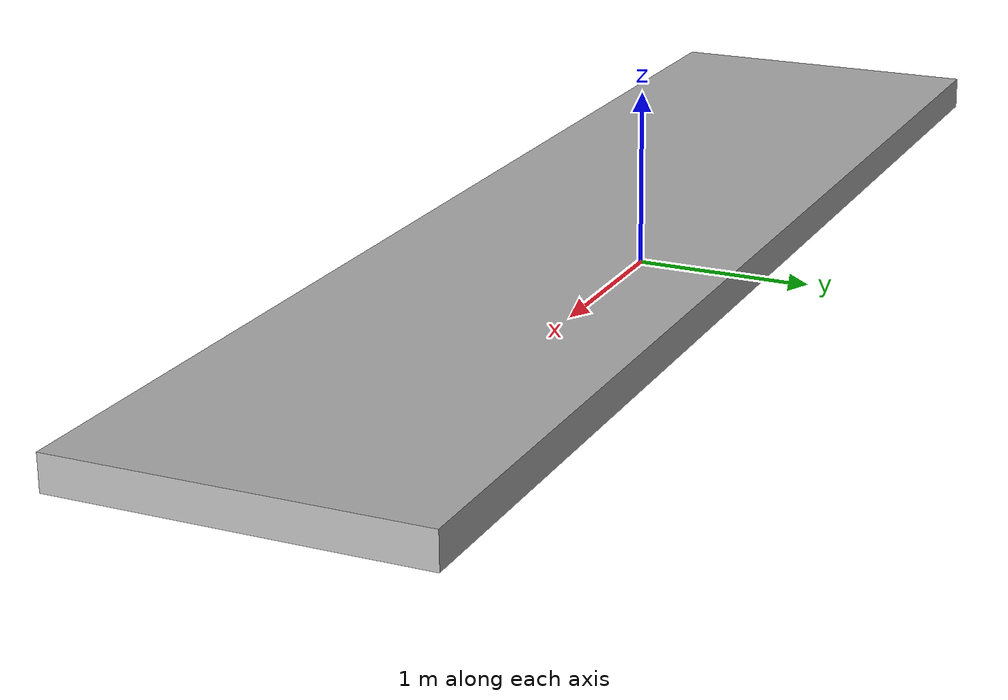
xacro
<?xml version="1.0"?>
<robot name="base_component" xmlns:xacro="http://ros.org/wiki/xacro">

  <link name="base_link">
    <inertial>
      <origin xyz="0.0 -0.25 0.1" rpy="0 0 0"/>
      <mass value="25119.999999999996"/>
      <inertia ixx="8457.066667" iyy="134057.066667" izz="142346.666667" ixy="0.0" iyz="-0.0" ixz="0.0"/>
    </inertial>
    <visual>
      <origin xyz="0 0 0" rpy="0 0 0"/>
      <geometry>
        <mesh filename="package://conveyor_belt/meshes/elements/base_component_base_link.stl" scale="0.001 0.001 0.001"/>
      </geometry>
      <material name="silver">
        <color rgba="0.7 0.7 0.7 1.0"/>
      </material>
    </visual>
    <collision>
      <origin xyz="0 0 0" rpy="0 0 0"/>
      <geometry>
        <mesh filename="package://conveyor_belt/meshes/elements/base_component_base_link.stl" scale="0.001 0.001 0.001"/>
      </geometry>
    </collision>
  </link>

  <gazebo>
    <static>true</static>
  </gazebo>

</robot>
